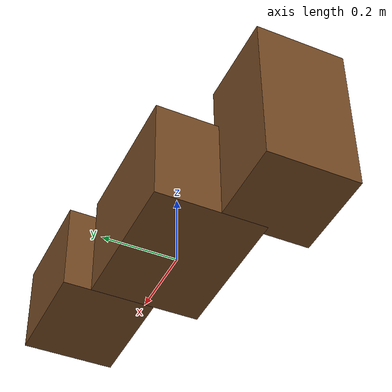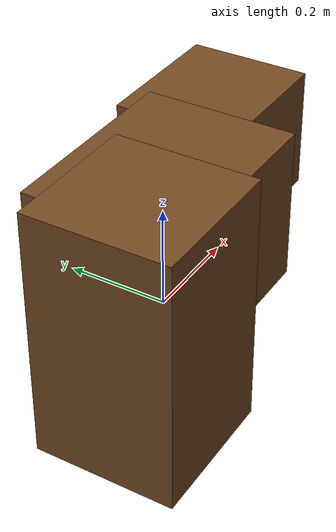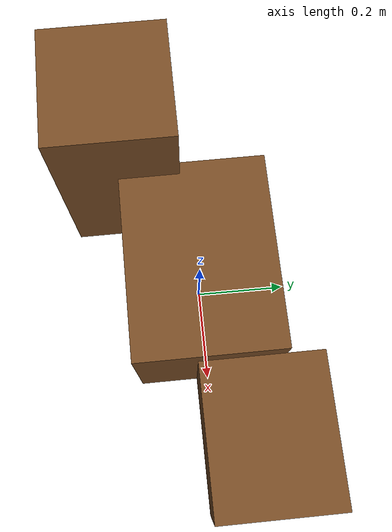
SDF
<?xml version="1.0"?>
<sdf version="1.7">
  <model name="clutter_pile">
    <static>true</static>
    <link name="link">

      <!-- Main box. -->
      <visual name="box_a_visual">
        <pose>0 0 0.15 0 0 0</pose>
        <geometry><box><size>0.40 0.30 0.30</size></box></geometry>
        <material>
          <ambient>0.34 0.21 0.10 1</ambient>
          <diffuse>0.46 0.29 0.14 1</diffuse>
          <specular>0.05 0.05 0.05 1</specular>
        </material>
      </visual>
      <collision name="box_a_collision">
        <pose>0 0 0.15 0 0 0</pose>
        <geometry><box><size>0.40 0.30 0.30</size></box></geometry>
      </collision>

      <!-- Small box leaning on the +x side. -->
      <visual name="box_b_visual">
        <pose>0.35 0.10 0.125 0 0 0</pose>
        <geometry><box><size>0.30 0.25 0.25</size></box></geometry>
        <material>
          <ambient>0.34 0.21 0.10 1</ambient>
          <diffuse>0.46 0.29 0.14 1</diffuse>
          <specular>0.05 0.05 0.05 1</specular>
        </material>
      </visual>
      <collision name="box_b_collision">
        <pose>0.35 0.10 0.125 0 0 0</pose>
        <geometry><box><size>0.30 0.25 0.25</size></box></geometry>
      </collision>

      <!-- Tall box on the -x side: the part that actually fills the camera frame. -->
      <visual name="box_c_visual">
        <pose>-0.30 -0.15 0.225 0 0 0</pose>
        <geometry><box><size>0.25 0.25 0.45</size></box></geometry>
        <material>
          <ambient>0.34 0.21 0.10 1</ambient>
          <diffuse>0.46 0.29 0.14 1</diffuse>
          <specular>0.05 0.05 0.05 1</specular>
        </material>
      </visual>
      <collision name="box_c_collision">
        <pose>-0.30 -0.15 0.225 0 0 0</pose>
        <geometry><box><size>0.25 0.25 0.45</size></box></geometry>
      </collision>

    </link>
  </model>
</sdf>
